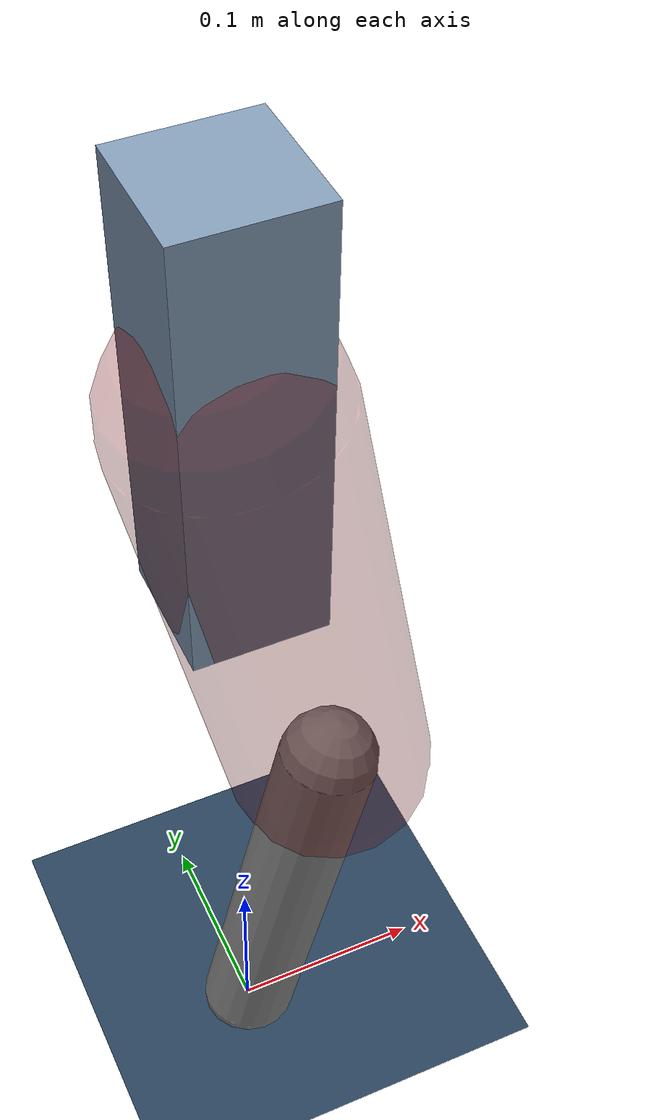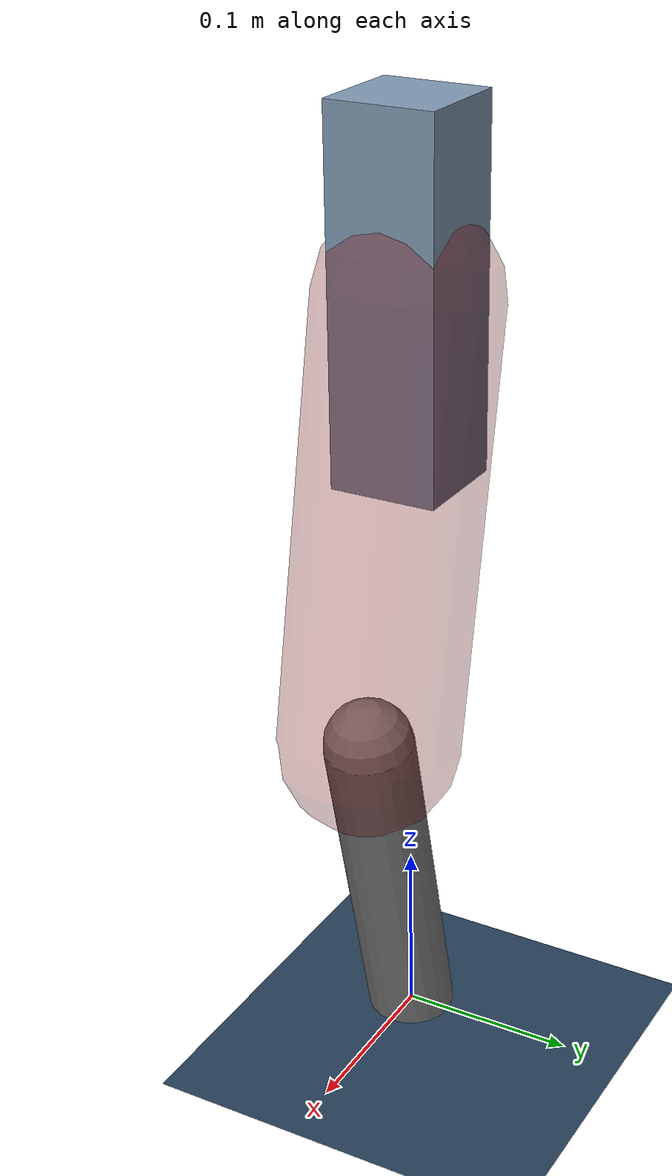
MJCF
<mujoco model="Hopper2D">
	<compiler inertiafromgeom="true" angle="radian" />
	<option timestep="0.001" integrator="implicit" cone="elliptic" solver="Newton" tolerance="1e-10" />

	<default>
		<geom contype="1" conaffinity="1" condim="3" friction="2 0.005 0.0001" solref="0.005 1" />
		<joint limited="true" damping="0.1" />
	</default>

	<asset>
		<texture name="skybox" type="skybox" builtin="gradient" rgb1=".4 .6 .8" rgb2="0 0 0" width="800" height="800" />
		<texture name="grid" type="2d" builtin="checker" rgb1=".1 .2 .3" rgb2=".2 .3 .4" width="300" height="300" mark="edge" markrgb=".2 .3 .4" />
		<material name="ground" texture="grid" texrepeat="1 1" texuniform="true" reflectance="0.1" />
		<material name="leg" rgba="0.5 0.6 0.7 1" />
	</asset>

	<worldbody>

		<geom name="floor" type="plane" size="5 5 0.25" material="ground" />

		<light directional="false" diffuse="0.8 0.8 0.8" specular="0.3 0.3 0.3" pos="0 0 2" dir="0 0 -1" />
		<light mode="targetbodycom" target="base" directional="false" diffuse="0.8 0.8 0.8" specular="0.3 0.3 0.3" pos="0 0 2" dir="0 0 -1" />

		<camera name="fixed" pos="0 -2 1" xyaxes="1 0 0 0 0 1" />
		<camera name="tracking" mode="trackcom" pos="0 -3 1" />

		<body name="root" pos="0 0 0.43652629718576397">
			<joint name="slide_x" type="slide" axis="1 0 0" range="-100 100" />
			<joint name="slide_z" type="slide" axis="0 0 1" range="0 10" />

			<body name="base" pos="0 0 0">
				<geom name="torso" type="box" size="0.03 0.03 0.1" mass="3.412" material="leg" />

				<body name="link1" pos="0 0 0" euler="0 1.3748799275447692 0">
					<joint type="hinge" axis="0 -1 0" pos="0 0 0" name="hinge1" limited="true" range="-3.14 3.14" stiffness="0" damping="0.1" />
					<geom name="thigh" type="capsule" fromto="0 0 0 0.24060220384041486 0 0" size="0.05" rgba="0.5 0 0 0.3" mass="0.8321657299850787" />

					<body name="link2" pos="0.24060220384041486 0 0" euler="0 0.4253721973291046 0">
						<joint type="hinge" axis="0 -1 0" pos="0 0 0" name="hinge2" limited="true" range="-3.14 3.14" stiffness="0" damping="0.1" />
						<geom name="shank" type="capsule" fromto="0 0 0 0.20592409334534909 0 0" size="0.025" mass="0.4058392746762793" />

					</body>
				</body>
			</body>
		</body>
	</worldbody>

	<actuator>
		<motor name="torque1" joint="hinge1" ctrlrange="-253.60927440067684 253.60927440067684" ctrllimited="true" gear="1" />
		<motor name="torque2" joint="hinge2" ctrlrange="-22.8157730281861 22.8157730281861" ctrllimited="true" gear="1" />
	</actuator>
</mujoco>
